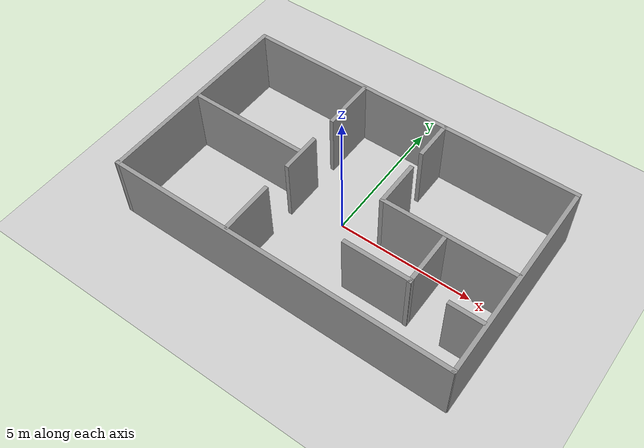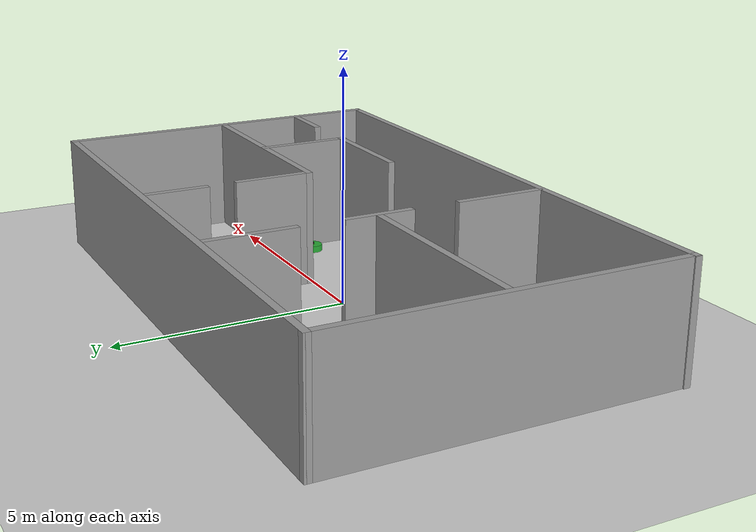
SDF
<sdf version="1.7">
 <world name="default">
  <light name="sun" type="directional">
   <pose>0 0 10 0 -0 0</pose>
   <diffuse>0.8 0.8 0.8 1</diffuse>
   <specular>0.2 0.2 0.2 1</specular>
   <attenuation>
    <range>1000</range>
    <constant>0.9</constant>
    <linear>0.01</linear>
    <quadratic>0.001</quadratic>
   </attenuation>
   <direction>-0.5 0.1 -0.9</direction>
   <spot><inner_angle>0</inner_angle><outer_angle>0</outer_angle><falloff>0</falloff></spot>
  </light>
  <model name="ground_plane">
   <static>1</static>
   <link name="link">
    <collision name="collision">
     <geometry><plane><normal>0 0 1</normal><size>100 100</size></plane></geometry>
     <surface><friction><ode><mu>100</mu><mu2>50</mu2></ode></friction></surface>
    </collision>
    <visual name="visual">
     <cast_shadows>0</cast_shadows>
     <geometry><plane><normal>0 0 1</normal><size>100 100</size></plane></geometry>
     <material>
      <script><uri>file://media/materials/scripts/gazebo.material</uri><name>Gazebo/Grey</name></script>
     </material>
    </visual>
   </link>
  </model>
  <gravity>0 0 -9.8</gravity>
  <magnetic_field>6e-06 2.3e-05 -4.2e-05</magnetic_field>
  <atmosphere type="adiabatic"/>
  <physics type="ode">
   <max_step_size>0.001</max_step_size>
   <real_time_factor>1</real_time_factor>
   <real_time_update_rate>1000</real_time_update_rate>
  </physics>
  <scene><ambient>0.4 0.4 0.4 1</ambient><background>0.7 0.7 0.7 1</background><shadows>1</shadows></scene>
  <audio><device>default</device></audio>
  <spherical_coordinates>
   <surface_model>EARTH_WGS84</surface_model>
   <latitude_deg>0</latitude_deg>
   <longitude_deg>0</longitude_deg>
   <elevation>0</elevation>
   <heading_deg>0</heading_deg>
  </spherical_coordinates>
  <model name="home">
   <pose>0.045747 0.08334 0 0 -0 0</pose>
   <link name="Wall_14">
    <collision name="Wall_14_Collision">
     <geometry><box><size>12.75 0.15 2.5</size></box></geometry>
     <pose>0 0 1.25 0 -0 0</pose>
    </collision>
    <visual name="Wall_14_Visual">
     <pose>0 0 1.25 0 -0 0</pose>
     <geometry><box><size>12.75 0.15 2.5</size></box></geometry>
     <material>
      <script><uri>file://media/materials/scripts/gazebo.material</uri><name>Gazebo/Grey</name></script>
      <ambient>1 1 1 1</ambient>
     </material>
     <meta><layer>0</layer></meta>
    </visual>
    <pose>-0.01265 -3.71713 0 0 -0 3.14159</pose>
   </link>
   <link name="Wall_15">
    <collision name="Wall_15_Collision">
     <geometry><box><size>7.58467 0.15 2.5</size></box></geometry>
     <pose>0 0 1.25 0 -0 0</pose>
    </collision>
    <visual name="Wall_15_Visual">
     <pose>0 0 1.25 0 -0 0</pose>
     <geometry><box><size>7.58467 0.15 2.5</size></box></geometry>
     <material>
      <script><uri>file://media/materials/scripts/gazebo.material</uri><name>Gazebo/Grey</name></script>
      <ambient>1 1 1 1</ambient>
     </material>
     <meta><layer>0</layer></meta>
    </visual>
    <pose>-6.2867 -0 0 0 -0 1.57097</pose>
   </link>
   <link name="Wall_16">
    <collision name="Wall_16_Collision">
     <geometry><box><size>12.75 0.15 2.5</size></box></geometry>
     <pose>0 0 1.25 0 -0 0</pose>
    </collision>
    <visual name="Wall_16_Visual">
     <pose>0 0 1.25 0 -0 0</pose>
     <geometry><box><size>12.75 0.15 2.5</size></box></geometry>
     <material>
      <script><uri>file://media/materials/scripts/gazebo.material</uri><name>Gazebo/Grey</name></script>
      <ambient>1 1 1 1</ambient>
     </material>
     <meta><layer>0</layer></meta>
    </visual>
    <pose>0.01265 3.71713 0 0 -0 0</pose>
   </link>
   <link name="Wall_17">
    <collision name="Wall_17_Collision">
     <geometry><box><size>7.54772 0.15 2.5</size></box></geometry>
     <pose>0 0 1.25 0 -0 0</pose>
    </collision>
    <visual name="Wall_17_Visual">
     <pose>0 0 1.25 0 -0 0</pose>
     <geometry><box><size>7.54772 0.15 2.5</size></box></geometry>
     <material>
      <script><uri>file://media/materials/scripts/gazebo.material</uri><name>Gazebo/Grey</name></script>
      <ambient>1 1 1 1</ambient>
     </material>
     <meta><layer>0</layer></meta>
    </visual>
    <pose>6.31265 0.018268 0 0 -0 -1.5708</pose>
   </link>
   <link name="Wall_20">
    <collision name="Wall_20_Collision">
     <geometry><box><size>2 0.15 2.5</size></box></geometry>
     <pose>0 0 1.25 0 -0 0</pose>
    </collision>
    <visual name="Wall_20_Visual">
     <pose>0 0 1.25 0 -0 0</pose>
     <geometry><box><size>2 0.15 2.5</size></box></geometry>
     <material>
      <script><uri>file://media/materials/scripts/gazebo.material</uri><name>Gazebo/Grey</name></script>
      <ambient>1 1 1 1</ambient>
     </material>
     <meta><layer>0</layer></meta>
    </visual>
    <pose>-1.8022 -2.70917 0 0 -0 1.5708</pose>
   </link>
   <link name="Wall_22">
    <collision name="Wall_22_Collision">
     <geometry><box><size>1.5 0.15 2.5</size></box></geometry>
     <pose>0 0 1.25 0 -0 0</pose>
    </collision>
    <visual name="Wall_22_Visual">
     <pose>0 0 1.25 0 -0 0</pose>
     <geometry><box><size>1.5 0.15 2.5</size></box></geometry>
     <material>
      <script><uri>file://media/materials/scripts/gazebo.material</uri><name>Gazebo/Grey</name></script>
      <ambient>1 1 1 1</ambient>
     </material>
     <meta><layer>0</layer></meta>
    </visual>
    <pose>-1.8022 0.045303 0 0 -0 1.5708</pose>
   </link>
   <link name="Wall_24">
    <collision name="Wall_24_Collision">
     <geometry><box><size>2 0.15 2.5</size></box></geometry>
     <pose>0 0 1.25 0 -0 0</pose>
    </collision>
    <visual name="Wall_24_Visual">
     <pose>0 0 1.25 0 -0 0</pose>
     <geometry><box><size>2 0.15 2.5</size></box></geometry>
     <material>
      <script><uri>file://media/materials/scripts/gazebo.material</uri><name>Gazebo/Grey</name></script>
      <ambient>1 1 1 1</ambient>
     </material>
     <meta><layer>0</layer></meta>
    </visual>
    <pose>-1.8022 2.72652 0 0 -0 1.5708</pose>
   </link>
   <link name="Wall_26">
    <collision name="Wall_26_Collision">
     <geometry><box><size>4.5 0.15 2.5</size></box></geometry>
     <pose>0 0 1.25 0 -0 0</pose>
    </collision>
    <visual name="Wall_26_Visual">
     <pose>0 0 1.25 0 -0 0</pose>
     <geometry><box><size>4.5 0.15 2.5</size></box></geometry>
     <material>
      <script><uri>file://media/materials/scripts/gazebo.material</uri><name>Gazebo/Grey</name></script>
      <ambient>1 1 1 1</ambient>
     </material>
     <meta><layer>0</layer></meta>
    </visual>
    <pose>-4.06522 0.070705 0 0 -0 3.14159</pose>
   </link>
   <link name="Wall_29">
    <collision name="Wall_29_Collision">
     <geometry><box><size>5 0.15 2.5</size></box></geometry>
     <pose>0 0 1.25 0 -0 0</pose>
    </collision>
    <visual name="Wall_29_Visual">
     <pose>0 0 1.25 0 -0 0</pose>
     <geometry><box><size>5 0.15 2.5</size></box></geometry>
     <material>
      <script><uri>file://media/materials/scripts/gazebo.material</uri><name>Gazebo/Grey</name></script>
      <ambient>1 1 1 1</ambient>
     </material>
     <meta><layer>0</layer></meta>
    </visual>
    <pose>3.87687 -0.007455 0 0 -0 3.14159</pose>
   </link>
   <link name="Wall_30">
    <collision name="Wall_30_Collision">
     <geometry><box><size>1.75 0.15 2.5</size></box></geometry>
     <pose>0 0 1.25 0 -0 0</pose>
    </collision>
    <visual name="Wall_30_Visual">
     <pose>0 0 1.25 0 -0 0</pose>
     <geometry><box><size>1.75 0.15 2.5</size></box></geometry>
     <material>
      <script><uri>file://media/materials/scripts/gazebo.material</uri><name>Gazebo/Grey</name></script>
      <ambient>1 1 1 1</ambient>
     </material>
     <meta><layer>0</layer></meta>
    </visual>
    <pose>1.45187 0.792545 0 0 -0 1.5708</pose>
   </link>
   <link name="Wall_32">
    <collision name="Wall_32_Collision">
     <geometry><box><size>1.5 0.15 2.5</size></box></geometry>
     <pose>0 0 1.25 0 -0 0</pose>
    </collision>
    <visual name="Wall_32_Visual">
     <pose>0 0 1.25 0 -0 0</pose>
     <geometry><box><size>1.5 0.15 2.5</size></box></geometry>
     <material>
      <script><uri>file://media/materials/scripts/gazebo.material</uri><name>Gazebo/Grey</name></script>
      <ambient>1 1 1 1</ambient>
     </material>
     <meta><layer>0</layer></meta>
    </visual>
    <pose>1.40743 3.0186 0 0 -0 1.5708</pose>
   </link>
   <link name="Wall_34">
    <collision name="Wall_34_Collision">
     <geometry><box><size>2.14322 0.15 2.5</size></box></geometry>
     <pose>0 0 1.25 0 -0 0</pose>
    </collision>
    <visual name="Wall_34_Visual">
     <pose>0 0 1.25 0 -0 0</pose>
     <geometry><box><size>2.14322 0.15 2.5</size></box></geometry>
     <material>
      <script><uri>file://media/materials/scripts/gazebo.material</uri><name>Gazebo/Grey</name></script>
      <ambient>1 1 1 1</ambient>
     </material>
     <meta><layer>0</layer></meta>
    </visual>
    <pose>3.77039 -1.00521 0 0 -0 -1.5708</pose>
   </link>
   <link name="Wall_35">
    <collision name="Wall_35_Collision">
     <geometry><box><size>2.5 0.15 2.5</size></box></geometry>
     <pose>0 0 1.25 0 -0 0</pose>
    </collision>
    <visual name="Wall_35_Visual">
     <pose>0 0 1.25 0 -0 0</pose>
     <geometry><box><size>2.5 0.15 2.5</size></box></geometry>
     <material>
      <script><uri>file://media/materials/scripts/gazebo.material</uri><name>Gazebo/Grey</name></script>
      <ambient>1 1 1 1</ambient>
     </material>
     <meta><layer>0</layer></meta>
    </visual>
    <pose>2.59539 -1.97869 0 0 -0 3.14159</pose>
   </link>
   <link name="Wall_38">
    <collision name="Wall_38_Collision">
     <geometry><box><size>1.25 0.15 2.5</size></box></geometry>
     <pose>0 0 1.25 0 -0 0</pose>
    </collision>
    <visual name="Wall_38_Visual">
     <pose>0 0 1.25 0 -0 0</pose>
     <geometry><box><size>1.25 0.15 2.5</size></box></geometry>
     <material>
      <script><uri>file://media/materials/scripts/gazebo.material</uri><name>Gazebo/Grey</name></script>
      <ambient>1 1 1 1</ambient>
     </material>
     <meta><layer>0</layer></meta>
    </visual>
    <pose>5.64952 -1.9618 0 0 -0 0</pose>
   </link>
   <static>1</static>
  </model>
  <model name="grobot">
   <link name="base_footprint">
    <inertial>
     <pose>0.030821 0 0.089627 0 -0 0</pose>
     <mass>4.02</mass>
     <inertia>
      <ixx>0.0517137</ixx>
      <ixy>0</ixy>
      <ixz>0.000246269</ixz>
      <iyy>0.0522555</iyy>
      <iyz>0</iyz>
      <izz>0.0887436</izz>
     </inertia>
    </inertial>
    <collision name="base_footprint_fixed_joint_lump__chassis_link_collision">
     <pose>0.03 0 0.09 0 -0 0</pose>
     <geometry><cylinder><length>0.15</length><radius>0.21</radius></cylinder></geometry>
    </collision>
    <collision name="base_footprint_fixed_joint_lump__caster_wheel_link_collision_1">
     <pose>0.195 0 0.015 0 -0 0</pose>
     <geometry><sphere><radius>0.015</radius></sphere></geometry>
     <surface><friction><ode><mu>0.001</mu><mu2>0.001</mu2></ode></friction></surface>
    </collision>
    <visual name="base_footprint_fixed_joint_lump__chassis_link_visual">
     <pose>0.03 0 0.09 0 -0 0</pose>
     <geometry><cylinder><length>0.15</length><radius>0.21</radius></cylinder></geometry>
     <material>
      <script><name>Gazebo/Green</name><uri>file://media/materials/scripts/gazebo.material</uri></script>
     </material>
    </visual>
    <visual name="base_footprint_fixed_joint_lump__caster_wheel_link_visual_1">
     <pose>0.195 0 0.015 0 -0 0</pose>
     <geometry><sphere><radius>0.015</radius></sphere></geometry>
     <material>
      <script><name>Gazebo/Blue</name><uri>file://media/materials/scripts/gazebo.material</uri></script>
     </material>
    </visual>
    <visual name="base_footprint_fixed_joint_lump__imu_frame_visual_2">
     <pose>-0.015 0 0.165 0 -0 0</pose>
     <geometry><box><size>0.01556 0.020262 0.00254</size></box></geometry>
     <material>
      <script><name>Gazebo/Red</name><uri>file://media/materials/scripts/gazebo.material</uri></script>
     </material>
    </visual>
    <visual name="base_footprint_fixed_joint_lump__laser_frame_visual_3">
     <pose>0.03 0 0.185 0 -0 0</pose>
     <geometry><cylinder><length>0.04</length><radius>0.03</radius></cylinder></geometry>
     <material>
      <script><name>Gazebo/Black</name><uri>file://media/materials/scripts/gazebo.material</uri></script>
     </material>
    </visual>
    <sensor name="imu_sensor" type="imu">
     <always_on>1</always_on>
     <update_rate>100</update_rate>
     <visualize>1</visualize>
     <plugin name="imu_plugin" filename="libgazebo_ros_imu_sensor.so">
      <ros><remapping>~/out:=imu</remapping></ros>
      <initial_orientation_as_reference>0</initial_orientation_as_reference>
     </plugin>
     <pose>-0.015 0 0.165 0 -0 0</pose>
    </sensor>
    <sensor name="laser" type="ray">
     <visualize>0</visualize>
     <update_rate>100</update_rate>
     <ray>
      <scan>
       <horizontal>
        <samples>360</samples>
        <min_angle>-3.14</min_angle>
        <max_angle>3.14</max_angle>
        <resolution>1</resolution>
       </horizontal>
       <vertical><samples>1</samples><min_angle>0</min_angle><max_angle>0</max_angle></vertical>
      </scan>
      <range><min>0.3</min><max>12</max></range>
     </ray>
     <plugin name="laser_controller" filename="libgazebo_ros_ray_sensor.so">
      <ros><remapping>~/out:=scan</remapping></ros>
      <output_type>sensor_msgs/LaserScan</output_type>
      <frame_name>laser_frame</frame_name>
     </plugin>
     <pose>0.03 0 0.185 0 -0 0</pose>
    </sensor>
   </link>
   <joint name="left_wheel_joint" type="revolute">
    <pose relative_to="base_footprint">0 0.14915 0.0325 -1.5708 0 0</pose>
    <parent>base_footprint</parent>
    <child>left_wheel_link</child>
    <axis>
     <xyz>0 0 1</xyz>
     <limit><lower>-1e+16</lower><upper>1e+16</upper></limit>
     <dynamics><spring_reference>0</spring_reference><spring_stiffness>0</spring_stiffness></dynamics>
    </axis>
   </joint>
   <link name="left_wheel_link">
    <pose relative_to="left_wheel_joint">0 0 0 0 -0 0</pose>
    <inertial>
     <mass>0.037</mass>
     <inertia>
      <ixx>1.20181e-05</ixx>
      <ixy>0</ixy>
      <ixz>0</ixz>
      <iyy>1.20181e-05</iyy>
      <iyz>0</iyz>
      <izz>1.95406e-05</izz>
     </inertia>
    </inertial>
    <collision name="left_wheel_link_collision">
     <geometry><cylinder><length>0.027</length><radius>0.0325</radius></cylinder></geometry>
    </collision>
    <visual name="left_wheel_link_visual">
     <geometry><cylinder><length>0.027</length><radius>0.0325</radius></cylinder></geometry>
     <material>
      <script><name>Gazebo/Black</name><uri>file://media/materials/scripts/gazebo.material</uri></script>
     </material>
    </visual>
   </link>
   <joint name="right_wheel_joint" type="revolute">
    <pose relative_to="base_footprint">0 -0.14915 0.0325 -1.5708 0 0</pose>
    <parent>base_footprint</parent>
    <child>right_wheel_link</child>
    <axis>
     <xyz>0 0 1</xyz>
     <limit><lower>-1e+16</lower><upper>1e+16</upper></limit>
     <dynamics><spring_reference>0</spring_reference><spring_stiffness>0</spring_stiffness></dynamics>
    </axis>
   </joint>
   <link name="right_wheel_link">
    <pose relative_to="right_wheel_joint">0 0 0 0 -0 0</pose>
    <inertial>
     <mass>0.037</mass>
     <inertia>
      <ixx>1.20181e-05</ixx>
      <ixy>0</ixy>
      <ixz>0</ixz>
      <iyy>1.20181e-05</iyy>
      <iyz>0</iyz>
      <izz>1.95406e-05</izz>
     </inertia>
    </inertial>
    <collision name="right_wheel_link_collision">
     <geometry><cylinder><length>0.027</length><radius>0.0325</radius></cylinder></geometry>
    </collision>
    <visual name="right_wheel_link_visual">
     <geometry><cylinder><length>0.027</length><radius>0.0325</radius></cylinder></geometry>
     <material>
      <script><name>Gazebo/Black</name><uri>file://media/materials/scripts/gazebo.material</uri></script>
     </material>
    </visual>
   </link>
   <static>0</static>
   <plugin name="diff_drive" filename="libgazebo_ros_diff_drive.so">
    <ros><remapping>odom:=/odom</remapping></ros>
    <update_rate>30</update_rate>
    <left_joint>left_wheel_joint</left_joint>
    <right_joint>right_wheel_joint</right_joint>
    <wheel_separation>0.2983</wheel_separation>
    <wheel_diameter>0.065</wheel_diameter>
    <max_wheel_torque>20</max_wheel_torque>
    <max_wheel_acceleration>1.0</max_wheel_acceleration>
    <odometry_frame>odom</odometry_frame>
    <robot_base_frame>base_footprint</robot_base_frame>
    <publish_odom>1</publish_odom>
    <publish_odom_tf>0</publish_odom_tf>
    <publish_wheel_tf>0</publish_wheel_tf>
    <publish_wheel_joint_state>1</publish_wheel_joint_state>
    <odometry_topic>odom</odometry_topic>
    <command_topic>cmd_vel</command_topic>
   </plugin>
   <plugin name="joint_state_publisher" filename="libgazebo_ros_joint_state_publisher.so">
    <ros><remapping>~/out:=joint_states</remapping></ros>
    <update_rate>30</update_rate>
    <joint_name>left_wheel_joint</joint_name>
    <joint_name>right_wheel_joint</joint_name>
   </plugin>
   <pose>3.31676 -0.907024 -1.2e-05 -2e-06 -6.2e-05 -0.013144</pose>
  </model>
 </world>
</sdf>
